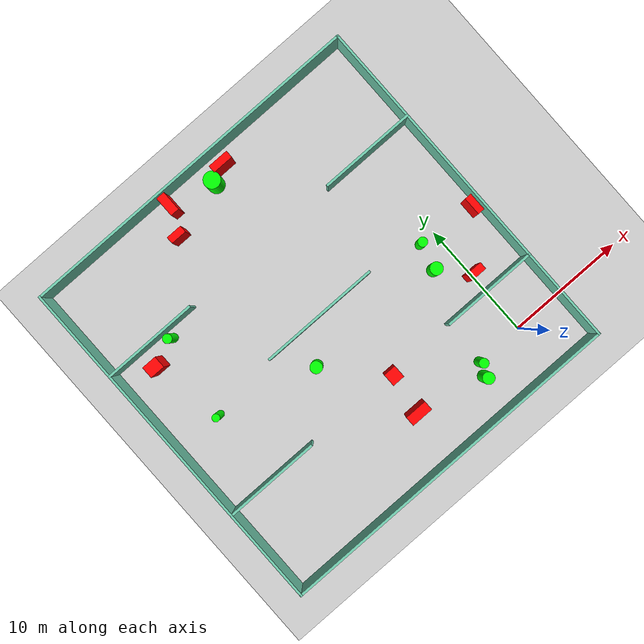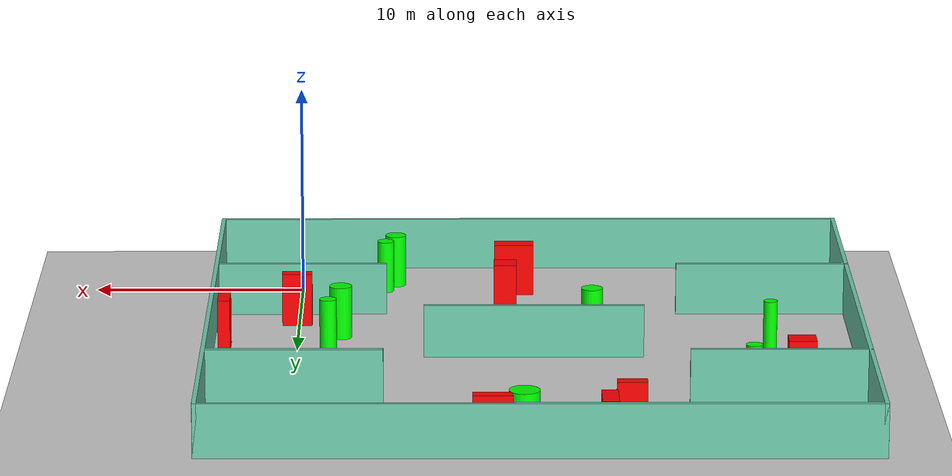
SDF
<sdf version="1.7">
 <world name="default">
  <light name="sun" type="directional">
   <pose>0 0 10 0 -0 0</pose>
   <diffuse>0.8 0.8 0.8 1</diffuse>
   <specular>0.2 0.2 0.2 1</specular>
   <attenuation>
    <range>1000</range>
    <constant>0.9</constant>
    <linear>0.01</linear>
    <quadratic>0.001</quadratic>
   </attenuation>
   <direction>-0.5 0.1 -0.9</direction>
   <spot><inner_angle>0</inner_angle><outer_angle>0</outer_angle><falloff>0</falloff></spot>
  </light>
  <model name="ground_plane">
   <static>1</static>
   <link name="link">
    <collision name="collision">
     <geometry><plane><normal>0 0 1</normal><size>100 100</size></plane></geometry>
     <surface>
      <contact><collide_bitmask>65535</collide_bitmask></contact>
      <friction><ode><mu>100</mu><mu2>50</mu2></ode></friction>
     </surface>
    </collision>
    <visual name="visual">
     <cast_shadows>0</cast_shadows>
     <geometry><plane><normal>0 0 1</normal><size>100 100</size></plane></geometry>
     <material>
      <script><uri>file://media/materials/scripts/gazebo.material</uri><name>Gazebo/Grey</name></script>
     </material>
    </visual>
   </link>
  </model>
  <gravity>0 0 -9.8</gravity>
  <magnetic_field>6e-06 2.3e-05 -4.2e-05</magnetic_field>
  <atmosphere type="adiabatic"/>
  <physics type="ode">
   <max_step_size>0.001</max_step_size>
   <real_time_factor>1</real_time_factor>
   <real_time_update_rate>1000</real_time_update_rate>
  </physics>
  <scene><ambient>0.4 0.4 0.4 1</ambient><background>0.7 0.7 0.7 1</background><shadows>1</shadows></scene>
  <spherical_coordinates>
   <surface_model>EARTH_WGS84</surface_model>
   <latitude_deg>0</latitude_deg>
   <longitude_deg>0</longitude_deg>
   <elevation>0</elevation>
   <heading_deg>0</heading_deg>
  </spherical_coordinates>
  <model name="my_base_walls">
   <link name="Wall_10">
    <collision name="Wall_10_Collision">
     <geometry><box><size>8.2 0.2 2.5</size></box></geometry>
     <pose>0 0 1.25 0 -0 0</pose>
    </collision>
    <visual name="Wall_10_Visual">
     <pose>0 0 1.25 0 -0 0</pose>
     <geometry><box><size>8.2 0.2 2.5</size></box></geometry>
     <material>
      <script><uri>file://media/materials/scripts/gazebo.material</uri><name>Gazebo/Grey</name></script>
      <ambient>0.435294 0.796078 0.67451 1</ambient>
     </material>
     <meta><layer>0</layer></meta>
    </visual>
    <pose>-11 -7 0 0 -0 0</pose>
   </link>
   <link name="Wall_12">
    <collision name="Wall_12_Collision">
     <geometry><box><size>8.2 0.2 2.5</size></box></geometry>
     <pose>0 0 1.25 0 -0 0</pose>
    </collision>
    <visual name="Wall_12_Visual">
     <pose>0 0 1.25 0 -0 0</pose>
     <geometry><box><size>8.2 0.2 2.5</size></box></geometry>
     <material>
      <script><uri>file://media/materials/scripts/gazebo.material</uri><name>Gazebo/Grey</name></script>
      <ambient>0.435294 0.796078 0.67451 1</ambient>
     </material>
     <meta><layer>0</layer></meta>
    </visual>
    <pose>-11 7 0 0 -0 0</pose>
   </link>
   <link name="Wall_14">
    <collision name="Wall_14_Collision">
     <geometry><box><size>8.2 0.2 2.5</size></box></geometry>
     <pose>0 0 1.25 0 -0 0</pose>
    </collision>
    <visual name="Wall_14_Visual">
     <pose>0 0 1.25 0 -0 0</pose>
     <geometry><box><size>8.2 0.2 2.5</size></box></geometry>
     <material>
      <script><uri>file://media/materials/scripts/gazebo.material</uri><name>Gazebo/Grey</name></script>
      <ambient>0.435294 0.796078 0.67451 1</ambient>
     </material>
     <meta><layer>0</layer></meta>
    </visual>
    <pose>11 7 0 0 -0 3.14159</pose>
   </link>
   <link name="Wall_16">
    <collision name="Wall_16_Collision">
     <geometry><box><size>10.2 0.2 2.5</size></box></geometry>
     <pose>0 0 1.25 0 -0 0</pose>
    </collision>
    <visual name="Wall_16_Visual">
     <pose>0 0 1.25 0 -0 0</pose>
     <geometry><box><size>10.2 0.2 2.5</size></box></geometry>
     <material>
      <script><uri>file://media/materials/scripts/gazebo.material</uri><name>Gazebo/Grey</name></script>
      <ambient>0.435294 0.796078 0.67451 1</ambient>
     </material>
     <meta><layer>0</layer></meta>
    </visual>
    <pose>0 0 0 0 -0 3.14159</pose>
   </link>
   <link name="Wall_2">
    <collision name="Wall_2_Collision">
     <geometry><box><size>30.2 0.2 2.5</size></box></geometry>
     <pose>0 0 1.25 0 -0 0</pose>
    </collision>
    <visual name="Wall_2_Visual">
     <pose>0 0 1.25 0 -0 0</pose>
     <geometry><box><size>30.2 0.2 2.5</size></box></geometry>
     <material>
      <script><uri>file://media/materials/scripts/gazebo.material</uri><name>Gazebo/Grey</name></script>
      <ambient>0.435294 0.796078 0.67451 1</ambient>
     </material>
     <meta><layer>0</layer></meta>
    </visual>
    <pose>0 -15 0 0 -0 3.14159</pose>
   </link>
   <link name="Wall_3">
    <collision name="Wall_3_Collision">
     <geometry><box><size>30.2 0.2 2.5</size></box></geometry>
     <pose>0 0 1.25 0 -0 0</pose>
    </collision>
    <visual name="Wall_3_Visual">
     <pose>0 0 1.25 0 -0 0</pose>
     <geometry><box><size>30.2 0.2 2.5</size></box></geometry>
     <material>
      <script><uri>file://media/materials/scripts/gazebo.material</uri><name>Gazebo/Grey</name></script>
      <ambient>0.435294 0.796078 0.67451 1</ambient>
     </material>
     <meta><layer>0</layer></meta>
    </visual>
    <pose>-15 0 0 0 -0 1.5708</pose>
   </link>
   <link name="Wall_4">
    <collision name="Wall_4_Collision">
     <geometry><box><size>30.2 0.2 2.5</size></box></geometry>
     <pose>0 0 1.25 0 -0 0</pose>
    </collision>
    <visual name="Wall_4_Visual">
     <pose>0 0 1.25 0 -0 0</pose>
     <geometry><box><size>30.2 0.2 2.5</size></box></geometry>
     <material>
      <script><uri>file://media/materials/scripts/gazebo.material</uri><name>Gazebo/Grey</name></script>
      <ambient>0.435294 0.796078 0.67451 1</ambient>
     </material>
     <meta><layer>0</layer></meta>
    </visual>
    <pose>0 15 0 0 -0 0</pose>
   </link>
   <link name="Wall_6">
    <collision name="Wall_6_Collision">
     <geometry><box><size>30.2 0.2 2.5</size></box></geometry>
     <pose>0 0 1.25 0 -0 0</pose>
    </collision>
    <visual name="Wall_6_Visual">
     <pose>0 0 1.25 0 -0 0</pose>
     <geometry><box><size>30.2 0.2 2.5</size></box></geometry>
     <material>
      <script><uri>file://media/materials/scripts/gazebo.material</uri><name>Gazebo/Grey</name></script>
      <ambient>0.435294 0.796078 0.67451 1</ambient>
     </material>
     <meta><layer>0</layer></meta>
    </visual>
    <pose>15 0 0 0 -0 1.5708</pose>
   </link>
   <link name="Wall_8">
    <collision name="Wall_8_Collision">
     <geometry><box><size>8.2 0.2 2.5</size></box></geometry>
     <pose>0 0 1.25 0 -0 0</pose>
    </collision>
    <visual name="Wall_8_Visual">
     <pose>0 0 1.25 0 -0 0</pose>
     <geometry><box><size>8.2 0.2 2.5</size></box></geometry>
     <material>
      <script><uri>file://media/materials/scripts/gazebo.material</uri><name>Gazebo/Grey</name></script>
      <ambient>0.435294 0.796078 0.67451 1</ambient>
     </material>
     <meta><layer>0</layer></meta>
    </visual>
    <pose>11 -7 0 0 -0 3.14159</pose>
   </link>
   <static>1</static>
   <pose>-11 11 0 0 -0 0</pose>
  </model>
  <model name="cylinder1">
   <static>1</static>
   <link name="link">
    <inertial>
     <mass>1</mass>
     <inertia><ixx>0.5</ixx><ixy>0</ixy><ixz>0</ixz><iyy>0.5</iyy><iyz>0</iyz><izz>1</izz></inertia>
    </inertial>
    <collision name="collision">
     <geometry><cylinder><radius>0.5001148999126658</radius><length>2.5</length></cylinder></geometry>
    </collision>
    <visual name="visual">
     <geometry><cylinder><radius>0.5001148999126658</radius><length>2.5</length></cylinder></geometry>
     <material>
      <ambient>0 1 0 1</ambient>
      <diffuse>0 1 0 1</diffuse>
      <specular>0.1 0.1 0.1 1</specular>
      <emissive>0 0 0 0</emissive>
     </material>
    </visual>
   </link>
   <pose>-13.769557750931902 8.20835547267872 1.25 0 0 0</pose>
  </model>
  <model name="cylinder2">
   <static>1</static>
   <link name="link">
    <inertial>
     <mass>1</mass>
     <inertia><ixx>0.5</ixx><ixy>0</ixy><ixz>0</ixz><iyy>0.5</iyy><iyz>0</iyz><izz>1</izz></inertia>
    </inertial>
    <collision name="collision">
     <geometry><cylinder><radius>0.6918766613061142</radius><length>2.5</length></cylinder></geometry>
    </collision>
    <visual name="visual">
     <geometry><cylinder><radius>0.6918766613061142</radius><length>2.5</length></cylinder></geometry>
     <material>
      <ambient>0 1 0 1</ambient>
      <diffuse>0 1 0 1</diffuse>
      <specular>0.1 0.1 0.1 1</specular>
      <emissive>0 0 0 0</emissive>
     </material>
    </visual>
   </link>
   <pose>-10.349749592718196 24.087136104040177 1.25 0 0 0</pose>
  </model>
  <model name="cylinder3">
   <static>1</static>
   <link name="link">
    <inertial>
     <mass>1</mass>
     <inertia><ixx>0.5</ixx><ixy>0</ixy><ixz>0</ixz><iyy>0.5</iyy><iyz>0</iyz><izz>1</izz></inertia>
    </inertial>
    <collision name="collision">
     <geometry><cylinder><radius>0.4895814747050624</radius><length>2.5</length></cylinder></geometry>
    </collision>
    <visual name="visual">
     <geometry><cylinder><radius>0.4895814747050624</radius><length>2.5</length></cylinder></geometry>
     <material>
      <ambient>0 1 0 1</ambient>
      <diffuse>0 1 0 1</diffuse>
      <specular>0.1 0.1 0.1 1</specular>
      <emissive>0 0 0 0</emissive>
     </material>
    </visual>
   </link>
   <pose>-4.492358104766517 -1.0179933463938013 1.25 0 0 0</pose>
  </model>
  <model name="cylinder4">
   <static>1</static>
   <link name="link">
    <inertial>
     <mass>1</mass>
     <inertia><ixx>0.5</ixx><ixy>0</ixy><ixz>0</ixz><iyy>0.5</iyy><iyz>0</iyz><izz>1</izz></inertia>
    </inertial>
    <collision name="collision">
     <geometry><cylinder><radius>0.3183479598581318</radius><length>2.5</length></cylinder></geometry>
    </collision>
    <visual name="visual">
     <geometry><cylinder><radius>0.3183479598581318</radius><length>2.5</length></cylinder></geometry>
     <material>
      <ambient>0 1 0 1</ambient>
      <diffuse>0 1 0 1</diffuse>
      <specular>0.1 0.1 0.1 1</specular>
      <emissive>0 0 0 0</emissive>
     </material>
    </visual>
   </link>
   <pose>-21.99323888235212 10.343695396852729 1.25 0 0 0</pose>
  </model>
  <model name="cylinder5">
   <static>1</static>
   <link name="link">
    <inertial>
     <mass>1</mass>
     <inertia><ixx>0.5</ixx><ixy>0</ixy><ixz>0</ixz><iyy>0.5</iyy><iyz>0</iyz><izz>1</izz></inertia>
    </inertial>
    <collision name="collision">
     <geometry><cylinder><radius>0.3929164362180567</radius><length>2.5</length></cylinder></geometry>
    </collision>
    <visual name="visual">
     <geometry><cylinder><radius>0.3929164362180567</radius><length>2.5</length></cylinder></geometry>
     <material>
      <ambient>0 1 0 1</ambient>
      <diffuse>0 1 0 1</diffuse>
      <specular>0.1 0.1 0.1 1</specular>
      <emissive>0 0 0 0</emissive>
     </material>
    </visual>
   </link>
   <pose>-1.4426800734807586 10.022299132963951 1.25 0 0 0</pose>
  </model>
  <model name="cylinder6">
   <static>1</static>
   <link name="link">
    <inertial>
     <mass>1</mass>
     <inertia><ixx>0.5</ixx><ixy>0</ixy><ixz>0</ixz><iyy>0.5</iyy><iyz>0</iyz><izz>1</izz></inertia>
    </inertial>
    <collision name="collision">
     <geometry><cylinder><radius>0.3923249862123006</radius><length>2.5</length></cylinder></geometry>
    </collision>
    <visual name="visual">
     <geometry><cylinder><radius>0.3923249862123006</radius><length>2.5</length></cylinder></geometry>
     <material>
      <ambient>0 1 0 1</ambient>
      <diffuse>0 1 0 1</diffuse>
      <specular>0.1 0.1 0.1 1</specular>
      <emissive>0 0 0 0</emissive>
     </material>
    </visual>
   </link>
   <pose>-4.0179434253323745 0.06444563746902032 1.25 0 0 0</pose>
  </model>
  <model name="cylinder7">
   <static>1</static>
   <link name="link">
    <inertial>
     <mass>1</mass>
     <inertia><ixx>0.5</ixx><ixy>0</ixy><ixz>0</ixz><iyy>0.5</iyy><iyz>0</iyz><izz>1</izz></inertia>
    </inertial>
    <collision name="collision">
     <geometry><cylinder><radius>0.38214682390480814</radius><length>2.5</length></cylinder></geometry>
    </collision>
    <visual name="visual">
     <geometry><cylinder><radius>0.38214682390480814</radius><length>2.5</length></cylinder></geometry>
     <material>
      <ambient>0 1 0 1</ambient>
      <diffuse>0 1 0 1</diffuse>
      <specular>0.1 0.1 0.1 1</specular>
      <emissive>0 0 0 0</emissive>
     </material>
    </visual>
   </link>
   <pose>-20.810127738755277 17.27716825938676 1.25 0 0 0</pose>
  </model>
  <model name="cylinder8">
   <static>1</static>
   <link name="link">
    <inertial>
     <mass>1</mass>
     <inertia><ixx>0.5</ixx><ixy>0</ixy><ixz>0</ixz><iyy>0.5</iyy><iyz>0</iyz><izz>1</izz></inertia>
    </inertial>
    <collision name="collision">
     <geometry><cylinder><radius>0.5266898926086775</radius><length>2.5</length></cylinder></geometry>
    </collision>
    <visual name="visual">
     <geometry><cylinder><radius>0.5266898926086775</radius><length>2.5</length></cylinder></geometry>
     <material>
      <ambient>0 1 0 1</ambient>
      <diffuse>0 1 0 1</diffuse>
      <specular>0.1 0.1 0.1 1</specular>
      <emissive>0 0 0 0</emissive>
     </material>
    </visual>
   </link>
   <pose>-1.987410615221009 7.823758225096546 1.25 0 0 0</pose>
  </model>
  <model name="box1">
   <static>1</static>
   <link name="link">
    <inertial>
     <mass>1</mass>
     <inertia><ixx>0.083</ixx><ixy>0</ixy><ixz>0</ixz><iyy>0.083</iyy><iyz>0</iyz><izz>0.083</izz></inertia>
    </inertial>
    <collision name="collision">
     <geometry><box><size>1.0668883676983993 1.0708475323664675 2.5</size></box></geometry>
    </collision>
    <visual name="visual">
     <geometry><box><size>1.0668883676983993 1.0708475323664675 2.5</size></box></geometry>
     <material>
      <ambient>1 0 0 1</ambient>
      <diffuse>1 0 0 1</diffuse>
      <specular>0.1 0.1 0.1 1</specular>
      <emissive>0 0 0 0</emissive>
     </material>
    </visual>
    <sensor name="my_contact" type="contact">
     <contact><collision>box_collision</collision><topic>__default_topic__</topic></contact>
    </sensor>
   </link>
   <pose>-9.757210230143304 3.8340334356712606 1.25 0 0 0</pose>
  </model>
  <model name="box2">
   <static>1</static>
   <link name="link">
    <inertial>
     <mass>1</mass>
     <inertia><ixx>0.083</ixx><ixy>0</ixy><ixz>0</ixz><iyy>0.083</iyy><iyz>0</iyz><izz>0.083</izz></inertia>
    </inertial>
    <collision name="collision">
     <geometry><box><size>1.3438844721948353 0.5848015466845395 2.5</size></box></geometry>
    </collision>
    <visual name="visual">
     <geometry><box><size>1.3438844721948353 0.5848015466845395 2.5</size></box></geometry>
     <material>
      <ambient>1 0 0 1</ambient>
      <diffuse>1 0 0 1</diffuse>
      <specular>0.1 0.1 0.1 1</specular>
      <emissive>0 0 0 0</emissive>
     </material>
    </visual>
    <sensor name="my_contact" type="contact">
     <contact><collision>box_collision</collision><topic>__default_topic__</topic></contact>
    </sensor>
   </link>
   <pose>-15.108657089042413 22.74513267622606 1.25 0 0 0</pose>
  </model>
  <model name="box3">
   <static>1</static>
   <link name="link">
    <inertial>
     <mass>1</mass>
     <inertia><ixx>0.083</ixx><ixy>0</ixy><ixz>0</ixz><iyy>0.083</iyy><iyz>0</iyz><izz>0.083</izz></inertia>
    </inertial>
    <collision name="collision">
     <geometry><box><size>0.7430706675790951 1.6944352235092996 2.5</size></box></geometry>
    </collision>
    <visual name="visual">
     <geometry><box><size>0.7430706675790951 1.6944352235092996 2.5</size></box></geometry>
     <material>
      <ambient>1 0 0 1</ambient>
      <diffuse>1 0 0 1</diffuse>
      <specular>0.1 0.1 0.1 1</specular>
      <emissive>0 0 0 0</emissive>
     </material>
    </visual>
    <sensor name="my_contact" type="contact">
     <contact><collision>box_collision</collision><topic>__default_topic__</topic></contact>
    </sensor>
   </link>
   <pose>-14.06784890360902 24.93529424705066 1.25 0 0 0</pose>
  </model>
  <model name="box4">
   <static>1</static>
   <link name="link">
    <inertial>
     <mass>1</mass>
     <inertia><ixx>0.083</ixx><ixy>0</ixy><ixz>0</ixz><iyy>0.083</iyy><iyz>0</iyz><izz>0.083</izz></inertia>
    </inertial>
    <collision name="collision">
     <geometry><box><size>1.2670525044689933 1.0108105064995978 2.5</size></box></geometry>
    </collision>
    <visual name="visual">
     <geometry><box><size>1.2670525044689933 1.0108105064995978 2.5</size></box></geometry>
     <material>
      <ambient>1 0 0 1</ambient>
      <diffuse>1 0 0 1</diffuse>
      <specular>0.1 0.1 0.1 1</specular>
      <emissive>0 0 0 0</emissive>
     </material>
    </visual>
    <sensor name="my_contact" type="contact">
     <contact><collision>box_collision</collision><topic>__default_topic__</topic></contact>
    </sensor>
   </link>
   <pose>-23.038969758165507 16.34983136844803 1.25 0 0 0</pose>
  </model>
  <model name="box5">
   <static>1</static>
   <link name="link">
    <inertial>
     <mass>1</mass>
     <inertia><ixx>0.083</ixx><ixy>0</ixy><ixz>0</ixz><iyy>0.083</iyy><iyz>0</iyz><izz>0.083</izz></inertia>
    </inertial>
    <collision name="collision">
     <geometry><box><size>1.7671213789219464 0.6198974847230638 2.5</size></box></geometry>
    </collision>
    <visual name="visual">
     <geometry><box><size>1.7671213789219464 0.6198974847230638 2.5</size></box></geometry>
     <material>
      <ambient>1 0 0 1</ambient>
      <diffuse>1 0 0 1</diffuse>
      <specular>0.1 0.1 0.1 1</specular>
      <emissive>0 0 0 0</emissive>
     </material>
    </visual>
    <sensor name="my_contact" type="contact">
     <contact><collision>box_collision</collision><topic>__default_topic__</topic></contact>
    </sensor>
   </link>
   <pose>-8.953584251191351 24.700567346133838 1.25 0 0 0</pose>
  </model>
  <model name="box6">
   <static>1</static>
   <link name="link">
    <inertial>
     <mass>1</mass>
     <inertia><ixx>0.083</ixx><ixy>0</ixy><ixz>0</ixz><iyy>0.083</iyy><iyz>0</iyz><izz>0.083</izz></inertia>
    </inertial>
    <collision name="collision">
     <geometry><box><size>1.4062778712801178 0.6395022265382346 2.5</size></box></geometry>
    </collision>
    <visual name="visual">
     <geometry><box><size>1.4062778712801178 0.6395022265382346 2.5</size></box></geometry>
     <material>
      <ambient>1 0 0 1</ambient>
      <diffuse>1 0 0 1</diffuse>
      <specular>0.1 0.1 0.1 1</specular>
      <emissive>0 0 0 0</emissive>
     </material>
    </visual>
    <sensor name="my_contact" type="contact">
     <contact><collision>box_collision</collision><topic>__default_topic__</topic></contact>
    </sensor>
   </link>
   <pose>0.11099806893556874 5.666845447132468 1.25 0 0 0</pose>
  </model>
  <model name="box7">
   <static>1</static>
   <link name="link">
    <inertial>
     <mass>1</mass>
     <inertia><ixx>0.083</ixx><ixy>0</ixy><ixz>0</ixz><iyy>0.083</iyy><iyz>0</iyz><izz>0.083</izz></inertia>
    </inertial>
    <collision name="collision">
     <geometry><box><size>1.8692357809927433 0.805512073231564 2.5</size></box></geometry>
    </collision>
    <visual name="visual">
     <geometry><box><size>1.8692357809927433 0.805512073231564 2.5</size></box></geometry>
     <material>
      <ambient>1 0 0 1</ambient>
      <diffuse>1 0 0 1</diffuse>
      <specular>0.1 0.1 0.1 1</specular>
      <emissive>0 0 0 0</emissive>
     </material>
    </visual>
    <sensor name="my_contact" type="contact">
     <contact><collision>box_collision</collision><topic>__default_topic__</topic></contact>
    </sensor>
   </link>
   <pose>-10.223210073304248 0.4428818014794933 1.25 0 0 0</pose>
  </model>
  <model name="box8">
   <static>1</static>
   <link name="link">
    <inertial>
     <mass>1</mass>
     <inertia><ixx>0.083</ixx><ixy>0</ixy><ixz>0</ixz><iyy>0.083</iyy><iyz>0</iyz><izz>0.083</izz></inertia>
    </inertial>
    <collision name="collision">
     <geometry><box><size>0.5747470261283512 1.534631297053643 2.5</size></box></geometry>
    </collision>
    <visual name="visual">
     <geometry><box><size>0.5747470261283512 1.534631297053643 2.5</size></box></geometry>
     <material>
      <ambient>1 0 0 1</ambient>
      <diffuse>1 0 0 1</diffuse>
      <specular>0.1 0.1 0.1 1</specular>
      <emissive>0 0 0 0</emissive>
     </material>
    </visual>
    <sensor name="my_contact" type="contact">
     <contact><collision>box_collision</collision><topic>__default_topic__</topic></contact>
    </sensor>
   </link>
   <pose>3.4017281459979714 9.593464095548457 1.25 0 0 0</pose>
  </model>
 </world>
</sdf>
